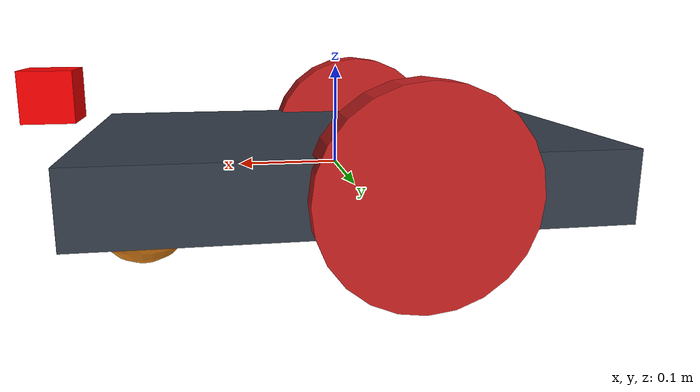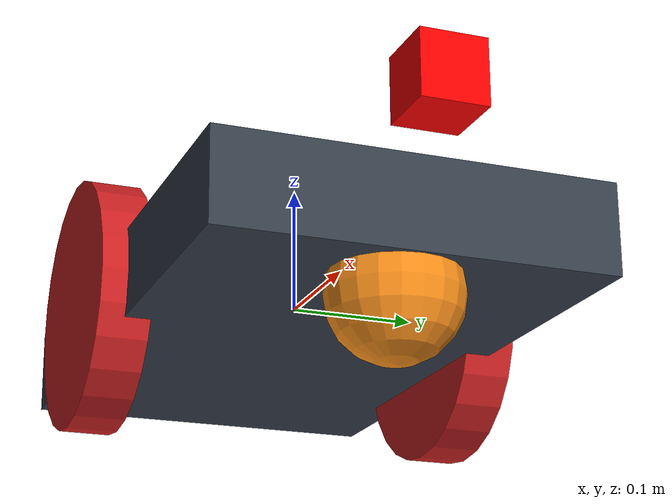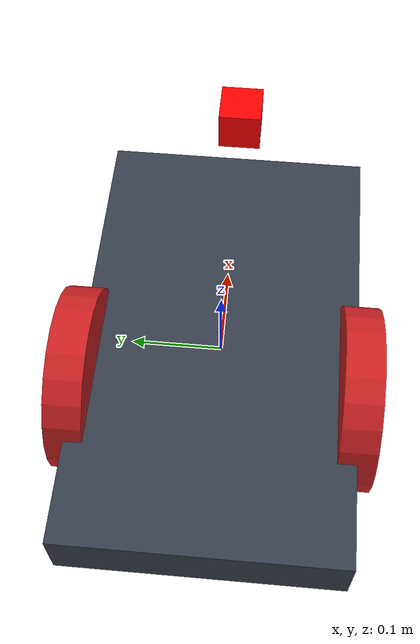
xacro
<?xml version="1.0" ?>
<robot name="robot2_laser_xacro" xmlns:xacro="http://www.ros.org/wiki/xacro">
  <!-- materials -->
  <gazebo reference="link_chassis">
    <material>Gazebo/Orange</material>
  </gazebo>
  <gazebo reference="link_back_left_wheel">
    <material>Gazebo/Blue</material>
  </gazebo>
  <gazebo reference="link_back_right_wheel">
    <material>Gazebo/Blue</material>
  </gazebo>
  <gazebo reference="link_front_left_wheel">
    <material>Gazebo/Blue</material>
  </gazebo>
  <gazebo reference="link_front_right_wheel">
    <material>Gazebo/Blue</material>
  </gazebo>
  <gazebo reference="hokuyo_link">
    <material>Gazebo/Red</material>
  </gazebo>
  <gazebo>
    <plugin filename="libgazebo_ros_diff_drive.so" name="differential_drive_controller">
      <legacyMode>true</legacyMode>
      <alwaysOn>true</alwaysOn>
      <updateRate>1000</updateRate>
      <leftJoint>joint_right_wheel</leftJoint>
      <rightJoint>joint_left_wheel</rightJoint>
      <wheelSeparation>0.2</wheelSeparation>
      <wheelDiameter>0.2</wheelDiameter>
      <torque>0.1</torque>
      <commandTopic>cmd_vel</commandTopic>
      <odometryTopic>odom</odometryTopic>
      <odometryFrame>odom</odometryFrame>
      <robotBaseFrame>link_chassis</robotBaseFrame>
      <odometrySource>world</odometrySource>
    </plugin>
  </gazebo>
  <!-- ros_control plugin -->
  <gazebo>
    <plugin filename="libgazebo_ros_control.so" name="gazebo_ros_control">
      <legacyModeNS>true</legacyModeNS>
    </plugin>
  </gazebo>
  <!-- hokuyo -->
  <gazebo reference="hokuyo_link">
    <sensor name="head_hokuyo_sensor" type="ray">
      <pose>0 0 0 0 0 0</pose>
      <visualize>false</visualize>
      <update_rate>40</update_rate>
      <ray>
        <scan>
          <horizontal>
            <samples>720</samples>
            <resolution>1</resolution>
            <min_angle>-1.570796</min_angle>
            <max_angle>1.570796</max_angle>
          </horizontal>
        </scan>
        <range>
          <min>0.10</min>
          <max>30.0</max>
          <resolution>0.01</resolution>
        </range>
        <noise>
          <type>gaussian</type>
          <mean>0.0</mean>
          <stddev>0.01</stddev>
        </noise>
      </ray>
      <plugin name="hokuyo_node" filename="libgazebo_ros_laser.so">
        <topicName>scan</topicName>
        <frameName>hokuyo_link</frameName>
      </plugin>
    </sensor>
  </gazebo>
    <gazebo reference="camera_link">
    <sensor type="camera" name="camera1">
      <update_rate>30.0</update_rate>
      <camera name="head">
        <horizontal_fov>1.3962634</horizontal_fov>
        <image>
          <width>800</width>
          <height>800</height>
          <format>R8G8B8</format>
        </image>
        <clip>
          <near>0.02</near>
          <far>300</far>
        </clip>
		<noise>
          <type>gaussian</type>
          <mean>0.0</mean>
          <stddev>0.007</stddev>
        </noise>
      </camera>
      <plugin name="camera_controller" filename="libgazebo_ros_camera.so">
        <alwaysOn>true</alwaysOn>
        <updateRate>0.0</updateRate>
        <cameraName>robot/camera1</cameraName>
        <imageTopicName>image_raw</imageTopicName>
        <cameraInfoTopicName>camera_info</cameraInfoTopicName>
        <frameName>camera_link</frameName>
        <hackBaseline>0.07</hackBaseline>
        <distortionK1>0.0</distortionK1>
        <distortionK2>0.0</distortionK2>
        <distortionK3>0.0</distortionK3>
        <distortionT1>0.0</distortionT1>
        <distortionT2>0.0</distortionT2>
      </plugin>
    </sensor>
  </gazebo>
  <material name="black">
    <color rgba="0.0 0.0 0.0 1.0"/>
  </material>
  <material name="blue">
    <color rgba="0.203125 0.23828125 0.28515625 1.0"/>
  </material>
  <material name="green">
    <color rgba="0.0 0.8 0.0 1.0"/>
  </material>
  <material name="grey">
    <color rgba="0.2 0.2 0.2 1.0"/>
  </material>
  <material name="orange">
    <color rgba="1.0 0.423529411765 0.0392156862745 1.0"/>
  </material>
  <material name="brown">
    <color rgba="0.870588235294 0.811764705882 0.764705882353 1.0"/>
  </material>
  <material name="red">
    <color rgba="0.80078125 0.12890625 0.1328125 1.0"/>
  </material>
  <material name="white">
    <color rgba="1.0 1.0 1.0 1.0"/>
  </material>
  <link name="link_chassis">
    <!-- pose and inertial -->
    <pose>0 0 0.1 0 0 0</pose>
    <inertial>
      <mass value="5"/>
      <origin rpy="0 0 0" xyz="0 0 0.1"/>
      <inertia ixx="0.0395416666667" ixy="0" ixz="0" iyy="0.106208333333" iyz="0" izz="0.106208333333"/>
    </inertial>
    <!-- body -->
    <collision name="collision_chassis">
      <geometry>
        <box size="0.5 0.3 0.07"/>
      </geometry>
    </collision>
    <visual>
      <origin rpy="0 0 0" xyz="0 0 0"/>
      <geometry>
        <box size="0.5 0.3 0.07"/>
      </geometry>
      <material name="blue"/>
    </visual>
    <!-- caster front -->
    <collision name="caster_front_collision">
      <origin rpy=" 0 0 0" xyz="0.35 0 -0.05"/>
      <geometry>
        <sphere radius="0.05"/>
      </geometry>
    </collision>
    <visual name="caster_front_visual">
      <origin rpy=" 0 0 0" xyz="0.2 0 -0.05"/>
      <geometry>
        <sphere radius="0.05"/>
      </geometry>
    </visual>
  </link>
  <link name="link_right_wheel">
    <inertial>
      <mass value="0.2"/>
      <origin rpy="0 1.5707 1.5707" xyz="0 0 0"/>
      <inertia ixx="0.000526666666667" ixy="0" ixz="0" iyy="0.000526666666667" iyz="0" izz="0.001"/>
    </inertial>
    <collision name="link_right_wheel_collision">
      <origin rpy="0 1.5707 1.5707" xyz="0 0 0"/>
      <geometry>
        <cylinder length="0.04" radius="0.1"/>
      </geometry>
    </collision>
    <visual name="link_right_wheel_visual">
      <origin rpy="0 1.5707 1.5707" xyz="0 0 0"/>
      <geometry>
        <cylinder length="0.04" radius="0.1"/>
      </geometry>
      <material name="red"/>
    </visual>
  </link>
  <link name="link_left_wheel">
    <inertial>
      <mass value="0.2"/>
      <origin rpy="0 1.5707 1.5707" xyz="0 0 0"/>
      <inertia ixx="0.000526666666667" ixy="0" ixz="0" iyy="0.000526666666667" iyz="0" izz="0.001"/>
    </inertial>
    <collision name="link_left_wheel_collision">
      <origin rpy="0 1.5707 1.5707" xyz="0 0 0"/>
      <geometry>
        <cylinder length="0.04" radius="0.1"/>
      </geometry>
    </collision>
    <visual name="link_left_wheel_visual">
      <origin rpy="0 1.5707 1.5707" xyz="0 0 0"/>
      <geometry>
        <cylinder length="0.04" radius="0.1"/>
      </geometry>
      <material name="red"/>
    </visual>
  </link>
  <joint name="joint_right_wheel" type="continuous">
    <origin rpy="0 0 0" xyz="-0.05 0.15 0"/>
    <child link="link_right_wheel"/>
    <parent link="link_chassis"/>
    <axis rpy="0 0 0" xyz="0 1 0"/>
    <limit effort="10000" velocity="1000"/>
    <joint_properties damping="1.0" friction="1.0"/>
  </joint>
  <joint name="joint_left_wheel" type="continuous">
    <origin rpy="0 0 0" xyz="-0.05 -0.15 0"/>
    <child link="link_left_wheel"/>
    <parent link="link_chassis"/>
    <axis rpy="0 0 0" xyz="0 1 0"/>
    <limit effort="10000" velocity="1000"/>
    <joint_properties damping="1.0" friction="1.0"/>
  </joint>
  <link name="hokuyo_link">
    <collision>
      <origin rpy="0 0 0" xyz="0 0 0.025"/>
      <geometry>
        <box size="0.05 0.05 0.05"/>
      </geometry>
    </collision>
    <visual>
      <origin rpy="0 0 0" xyz="0 0 0.025"/>
      <geometry>
        <box size="0.05 0.05 0.05"/>
      </geometry>
      <material name="red">
        <color rgba="1 0 0 1"/>
      </material>
    </visual>
    <inertial>
      <mass value="1e-5"/>
      <origin rpy="0 0 0" xyz="0 0 0"/>
      <inertia ixx="1e-6" ixy="0" ixz="0" iyy="1e-6" iyz="0" izz="1e-6"/>
    </inertial>
  </link>
  <joint name="hokuyo_joint" type="fixed">
    <axis xyz="0 1 0"/>
    <origin rpy="0 0 0" xyz="0.28 0 0.05"/>
    <parent link="link_chassis"/>
    <child link="hokuyo_link"/>
  </joint>
   	<link name="camera_link">
	    <collision>
	      <origin xyz="0 0 0.025" rpy="0 0 0"/>
	    <geometry>
		<box size="0.05 0.05 0.05"/>
	    </geometry> -->
	    </collision>
	    <inertial>
	      <mass value="1e-5" />
	      <origin xyz="0 0 0" rpy="0 0 0"/>
	      <inertia ixx="1e-6" ixy="0" ixz="0" iyy="1e-6" iyz="0" izz="1e-6" />
	    </inertial>
  </link>

  <joint name="camera_joint" type="fixed">
	    <axis xyz="0 1 0" />
	    <origin xyz="0.23 0 0.25" rpy="0 0 0"/>
	    <parent link="link_chassis"/>
	    <child link="camera_link"/>
	 </joint>
</robot>
